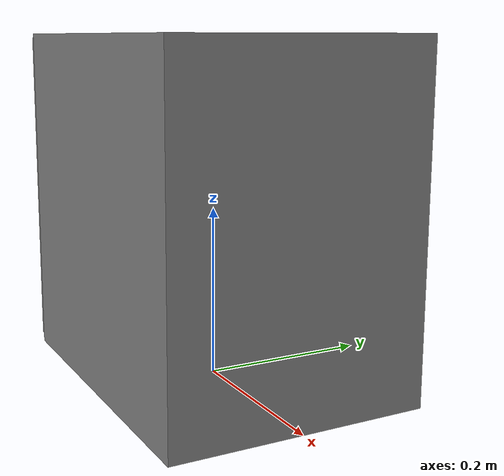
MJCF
<mujoco>
  <compiler angle="radian"/>
  <option gravity="0 0 -9.8"/>
  <worldbody>
    <body name="main_body" pos="0 0 0.0">
      <geom name="main_geom" type="box" size="0.2 0.15 0.2" density="1000" pos="0 0 0.2"/>
      <body name="door" pos="-0.212 0 0.0">
        <joint name="door_joint" type="hinge" pos="0 -0.16 0" axis="0 0 1" range="0 2.8"/>
        <geom name="child_geom" type="box" size="0.01 0.145 0.195" density="1000" pos="0 0 0.2"/>
        <geom name="handle" type="cylinder" size="0.01 0.195" density="1000" pos="-0.03 0.12 0.2"/>
      </body>
    </body>
  </worldbody>

  <actuator>
    <motor name="child_motor" joint="door_joint" ctrllimited="true" ctrlrange="-0.1 0.1"/>
  </actuator>
</mujoco>
